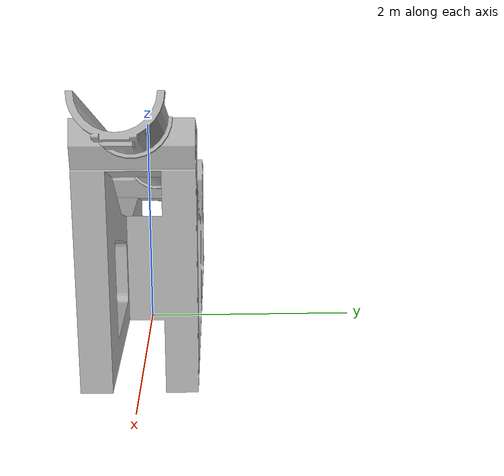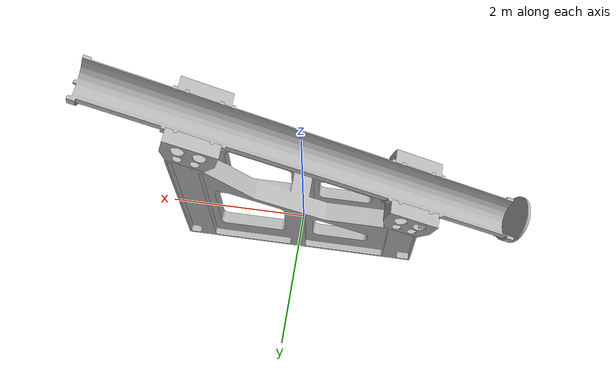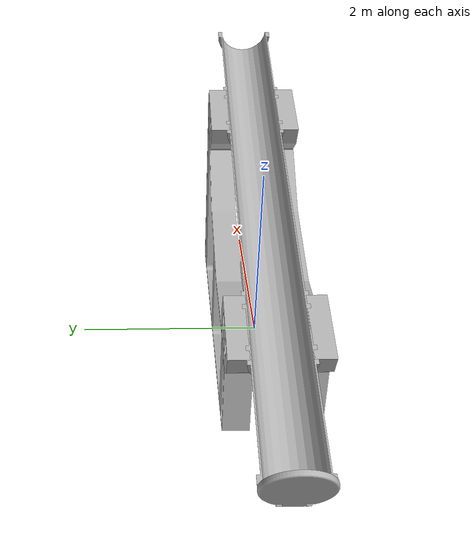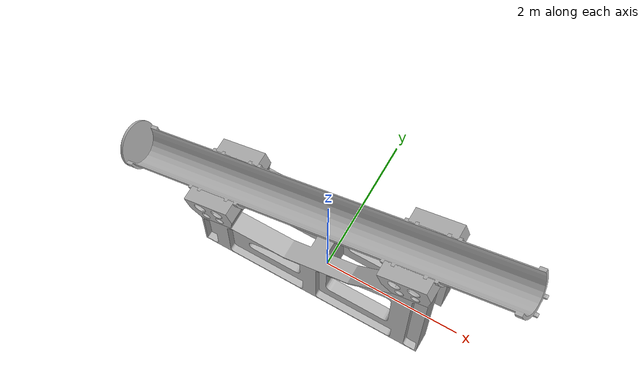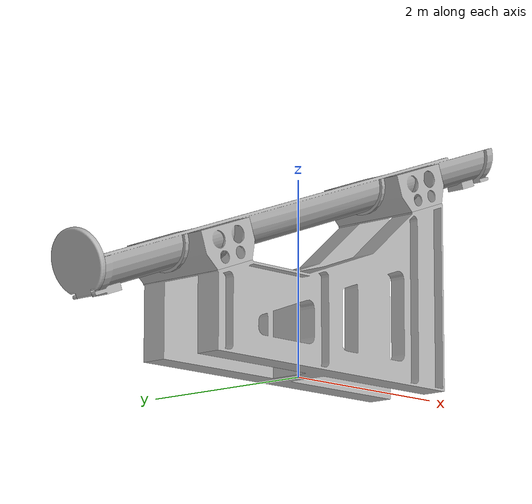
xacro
<?xml version="1.0" ?>
<robot name="launcher20deg_half" xmlns:xacro="http://www.ros.org/wiki/xacro">

<xacro:include filename="$(find launcher20deg_half_description)/urdf/materials.xacro" />
<xacro:include filename="$(find launcher20deg_half_description)/urdf/launcher20deg_half.trans" />
<xacro:include filename="$(find launcher20deg_half_description)/urdf/launcher20deg_half.gazebo" />

<link name="base_link"/>
<joint name="dummy_joint" type="fixed">
  <origin xyz="0 0 0" rpy="0 0 0" />
    <parent link="base_link" />
    <child link="launcher_platform" />
</joint>

<link name="launcher_platform">
  <inertial>
    <origin xyz="0.21956009217606984 4.3636388735968575e-16 0.6746334924440056" rpy="0 0 0"/>
    <mass value="10722.621074762288"/>
    <inertia ixx="3680.005759" iyy="13504.573497" izz="12126.040929" ixy="0.0" iyz="0.0" ixz="-2210.827735"/>
  </inertial>
  <visual>
    <origin xyz="0 0 0" rpy="0 0 0"/>
    <geometry>
      <mesh filename="package://launcher20deg_half_description/meshes/base_link.stl" scale="0.001 0.001 0.001"/>
    </geometry>
    <material name="silver"/>
  </visual>
  <collision>
    <origin xyz="0 0 0" rpy="0 0 0"/>
    <geometry>
      <mesh filename="package://launcher20deg_half_description/meshes/base_link.stl" scale="0.001 0.001 0.001"/>
    </geometry>
  </collision>
</link>

<link name="Canister_1">
  <inertial>
    <origin xyz="-1.3433186025729844 -5.829324127345314e-12 -0.694969038036306" rpy="0 0 0"/>
    <mass value="831.8619039368604"/>
    <inertia ixx="387.88388" iyy="2980.500638" izz="2660.044462" ixy="-0.0" iyz="-0.0" ixz="-953.284553"/>
  </inertial>
  <visual>
    <origin xyz="-1.262326 0.0 -2.249618" rpy="0 0 0"/>
    <geometry>
      <mesh filename="package://launcher20deg_half_description/meshes/Canister_1.stl" scale="0.001 0.001 0.001"/>
    </geometry>
    <material name="silver"/>
  </visual>
  <collision>
    <origin xyz="-1.262326 0.0 -2.249618" rpy="0 0 0"/>
    <geometry>
      <mesh filename="package://launcher20deg_half_description/meshes/Canister_1.stl" scale="0.001 0.001 0.001"/>
    </geometry>
  </collision>
</link>

<link name="Cup_1">
  <inertial>
    <origin xyz="0.1875705774787031 2.4632545340842703e-09 -0.686381472221144" rpy="0 0 0"/>
    <mass value="132.22389884749504"/>
    <inertia ixx="6.690933" iyy="3.560945" izz="4.004732" ixy="0.0" iyz="-0.0" ixz="1.126914"/>
  </inertial>
  <visual>
    <origin xyz="3.177629 -0.0 -1.389734" rpy="0 0 0"/>
    <geometry>
      <mesh filename="package://launcher20deg_half_description/meshes/Cup_1.stl" scale="0.001 0.001 0.001"/>
    </geometry>
    <material name="silver"/>
  </visual>
  <collision>
    <origin xyz="3.177629 -0.0 -1.389734" rpy="0 0 0"/>
    <geometry>
      <mesh filename="package://launcher20deg_half_description/meshes/Cup_1.stl" scale="0.001 0.001 0.001"/>
    </geometry>
  </collision>
</link>

<link name="CanisterHolder_1">
  <inertial>
    <origin xyz="-0.05951337321479344 1.4715522383126382e-16 0.16351174115532052" rpy="0 0 0"/>
    <mass value="335.0395971576902"/>
    <inertia ixx="43.686085" iyy="22.365267" izz="51.43432" ixy="0.0" iyz="0.0" ixz="-3.25077"/>
  </inertial>
  <visual>
    <origin xyz="1.419944 0.0 -0.847681" rpy="0 0 0"/>
    <geometry>
      <mesh filename="package://launcher20deg_half_description/meshes/CanisterHolder_1.stl" scale="0.001 0.001 0.001"/>
    </geometry>
    <material name="silver"/>
  </visual>
  <collision>
    <origin xyz="1.419944 0.0 -0.847681" rpy="0 0 0"/>
    <geometry>
      <mesh filename="package://launcher20deg_half_description/meshes/CanisterHolder_1.stl" scale="0.001 0.001 0.001"/>
    </geometry>
  </collision>
</link>

<link name="CanisterHolder_2">
  <inertial>
    <origin xyz="-0.05951351085707057 1.4715522383126382e-16 0.16351217113232974" rpy="0 0 0"/>
    <mass value="335.0395971576902"/>
    <inertia ixx="43.686085" iyy="22.365267" izz="51.43432" ixy="0.0" iyz="0.0" ixz="-3.25077"/>
  </inertial>
  <visual>
    <origin xyz="-1.399134 0.0 -1.873741" rpy="0 0 0"/>
    <geometry>
      <mesh filename="package://launcher20deg_half_description/meshes/CanisterHolder_2.stl" scale="0.001 0.001 0.001"/>
    </geometry>
    <material name="silver"/>
  </visual>
  <collision>
    <origin xyz="-1.399134 0.0 -1.873741" rpy="0 0 0"/>
    <geometry>
      <mesh filename="package://launcher20deg_half_description/meshes/CanisterHolder_2.stl" scale="0.001 0.001 0.001"/>
    </geometry>
  </collision>
</link>

<joint name="CanisterToHolder2" type="fixed">
  <origin xyz="-0.136808 0.0 0.375877" rpy="0 0 0"/>
  <parent link="CanisterHolder_2"/>
  <child link="Canister_1"/>
</joint>

<joint name="CupCloser" type="fixed">
  <origin xyz="-4.439955 0.0 -0.859884" rpy="0 0 0"/>
  <parent link="Canister_1"/>
  <child link="Cup_1"/>
</joint>

<joint name="BaseToHolder1" type="fixed">
  <origin xyz="-1.419944 0.0 0.847681" rpy="0 0 0"/>
  <parent link="base_link"/>
  <child link="CanisterHolder_1"/>
</joint>

<joint name="BaseToHolder2" type="fixed">
  <origin xyz="1.399134 0.0 1.873741" rpy="0 0 0"/>
  <parent link="base_link"/>
  <child link="CanisterHolder_2"/>
</joint>

</robot>

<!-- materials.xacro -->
<robot name="launcher20deg_half" xmlns:xacro="http://www.ros.org/wiki/xacro" >

  <material name="grey">
    <color rgba="${211/256} ${211/256} ${211/256} 1.0"/>
  </material>

  <material name="darkgrey">
    <color rgba="${47/255} ${79/255} ${79/255} 1.000"/>
  </material>

  <material name="silver">
    <color rgba="0.700 0.700 0.700 1.000"/>
  </material>

  <material name="white">
    <color rgba="1 1 1 1" />
  </material>

  <material name="orange">
    <color rgba="1 0.3 0.1 1"/>
  </material>

  <material name="blue">
    <color rgba="0.2 0.2 1 1"/>
  </material>

  <material name="red">
    <color rgba="0.8 0 0 1"/>
  </material>

  <material name="green">
    <color rgba="0.0 1 0.0 1"/>
  </material>

  <material name="black">
    <color rgba="0 0 0 1"/>
  </material>

</robot>
